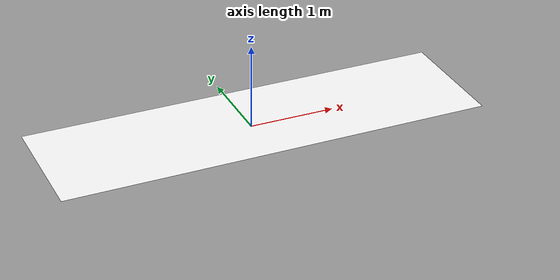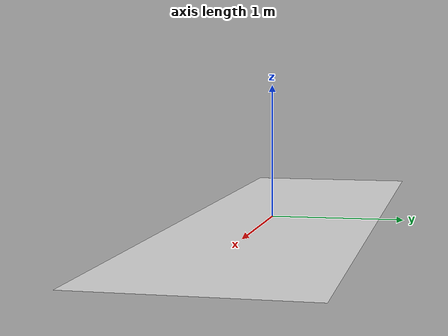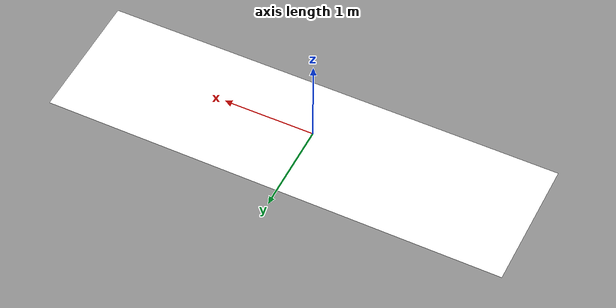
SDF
<?xml version="1.0"?>
<sdf version="1.6">
	<model name = "green_mat">
		<pose>0 0 0 0 0 0</pose>
		<static>true</static>
		<link name = "green_mat_link">
			<pose>0 0 0 0 0 0</pose>
			<visual name = "green_mat_visual">
				<geometry>
					<mesh>
						<uri>file://meshes/green_mat.dae</uri>
					</mesh>
				</geometry>
			</visual>
			<collision name="green_mat_collision">
				<geometry>
					<mesh>
						<uri>file://meshes/green_mat.dae</uri>
					</mesh>
				</geometry>
			</collision>
		</link>
	</model>
</sdf>
